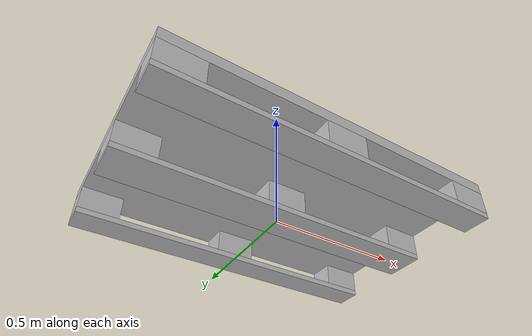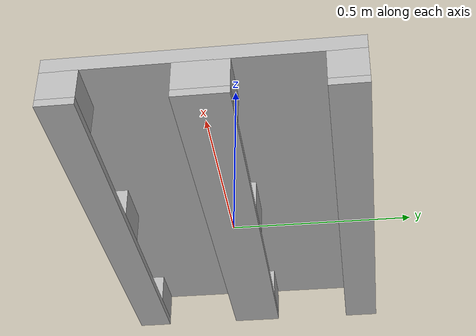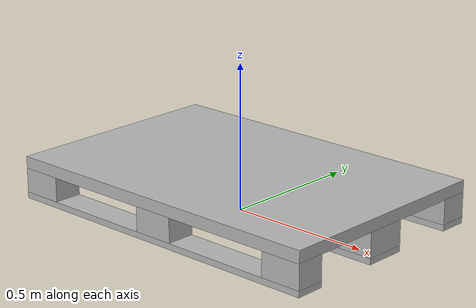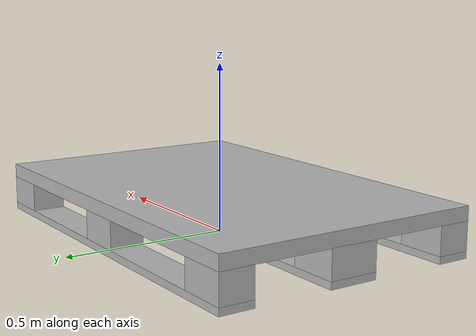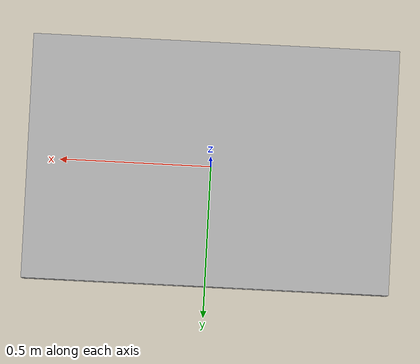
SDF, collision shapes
<?xml version="1.0" ?>
<!-- |    This document was autogenerated by xacro from model.xacro                    | -->
<!-- |    EDITING THIS FILE BY HAND IS NOT RECOMMENDED                                 | -->
<sdf version="1.5">
  <model name="EuroPallet">
    <!-- Rises the pallet above the ground -->
    <pose>0 0 0.0635  0 0 0</pose>
    <static>false</static>
    <link name="link">
      <inertial>
        <mass>25.0</mass>
        <inertia>
          <ixx>1</ixx>
          <ixy>0</ixy>
          <ixz>0</ixz>
          <iyy>1</iyy>
          <iyz>0</iyz>
          <izz>1</izz>
        </inertia>
      </inertial>
      <collision name="top">
        <pose>0 0 0.0625  0 0 0</pose>
        <geometry>
          <box>
            <size>1.20 0.80 0.042</size>
          </box>
        </geometry>
      </collision>
      <collision name="colum_1">
        <pose>0.5275 -0.35 0  0 0 0</pose>
        <geometry>
          <box>
            <size>.145 0.10 0.085</size>
          </box>
        </geometry>
      </collision>
      <collision name="colum_2">
        <pose>0.5275 0 0  0 0 0</pose>
        <geometry>
          <box>
            <size>.145 0.145 0.085</size>
          </box>
        </geometry>
      </collision>
      <collision name="colum_3">
        <pose>0.5275 0.35 0  0 0 0</pose>
        <geometry>
          <box>
            <size>.145 0.10 0.085</size>
          </box>
        </geometry>
      </collision>
      <collision name="colum_4">
        <pose>0 -0.35 0  0 0 0</pose>
        <geometry>
          <box>
            <size>.145 0.10 0.085</size>
          </box>
        </geometry>
      </collision>
      <collision name="colum_5">
        <pose>0 0 0  0 0 0</pose>
        <geometry>
          <box>
            <size>.145 0.145 0.085</size>
          </box>
        </geometry>
      </collision>
      <collision name="colum_6">
        <pose>0 0.35 0  0 0 0</pose>
        <geometry>
          <box>
            <size>.145 0.10 0.085</size>
          </box>
        </geometry>
      </collision>
      <collision name="colum_7">
        <pose>-0.5275 -0.35 0  0 0 0</pose>
        <geometry>
          <box>
            <size>.145 0.10 0.085</size>
          </box>
        </geometry>
      </collision>
      <collision name="colum_8">
        <pose>-0.5275 0 0  0 0 0</pose>
        <geometry>
          <box>
            <size>.145 0.145 0.085</size>
          </box>
        </geometry>
      </collision>
      <collision name="colum_9">
        <pose>-0.5275 0.35 0  0 0 0</pose>
        <geometry>
          <box>
            <size>.145 0.10 0.085</size>
          </box>
        </geometry>
      </collision>
      <collision name="bottom_1">
        <pose>0 -0.35 -0.053  0 0 0</pose>
        <geometry>
          <box>
            <size>1.20 0.10 0.021</size>
          </box>
        </geometry>
      </collision>
      <collision name="bottom_2">
        <pose>0 0 -0.053  0 0 0</pose>
        <geometry>
          <box>
            <size>1.20 0.145 0.021</size>
          </box>
        </geometry>
      </collision>
      <collision name="bottom_3">
        <pose>0 0.35 -0.053  0 0 0</pose>
        <geometry>
          <box>
            <size>1.20 0.10 0.021</size>
          </box>
        </geometry>
      </collision>
      <visual name="visual">
        <geometry>
          <mesh>
            <uri>model://europallet/meshes/europallet.dae</uri>
          </mesh>
        </geometry>
      </visual>
    </link>
  </model>
</sdf>
